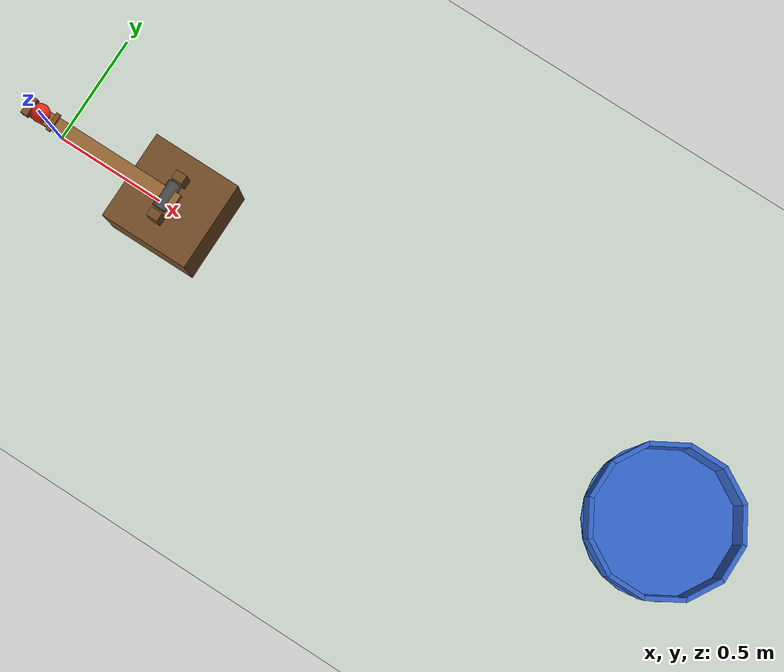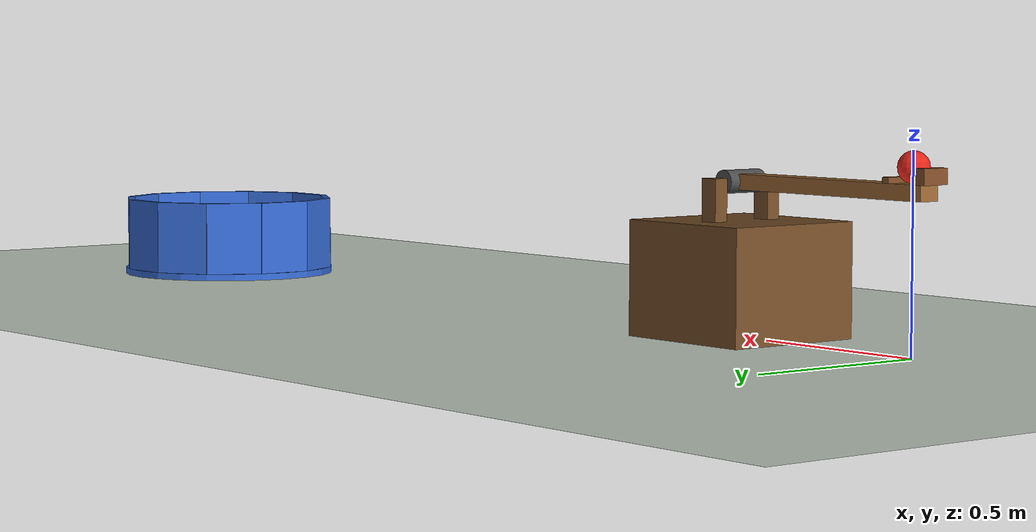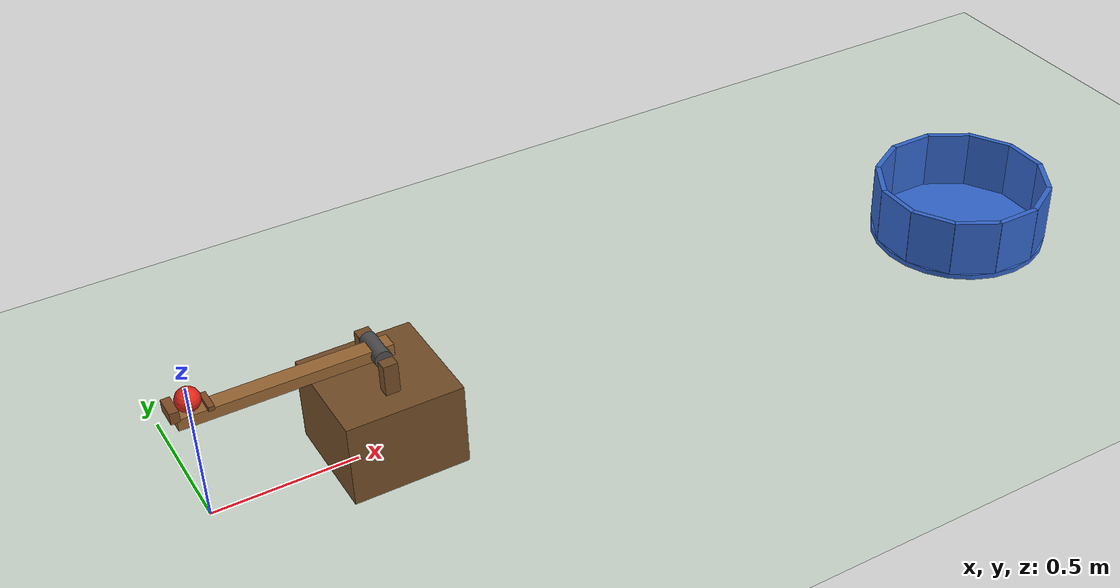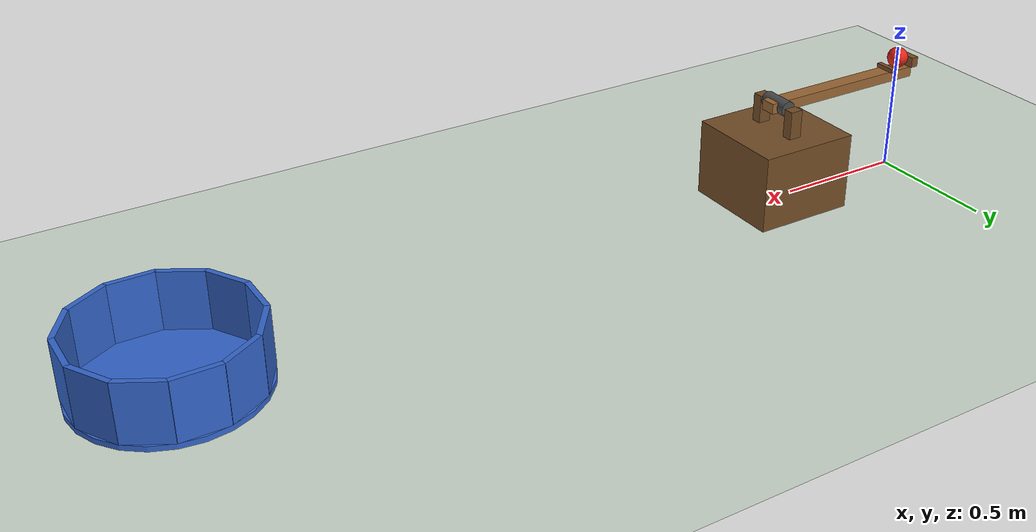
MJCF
<mujoco model="catapult_to_bucket">
  <compiler angle="radian"/>
  <option timestep="0.002" integrator="implicitfast" gravity="0 0 -9.81"/>

  <visual>
    <global offwidth="1280" offheight="720"/>
  </visual>

  <worldbody>
    <light name="sun" pos="1.5 -2 5" dir="0 0.3 -1" directional="true"/>
    <geom name="floor" type="plane" pos="1.5 0 0" size="5 5 0.1" rgba="0.8 0.85 0.8 1"/>

    <!-- catapult frame (static) -->
    <geom name="catapult_base" type="box" pos="0.6 0 0.15" size="0.2 0.2 0.15" rgba="0.45 0.3 0.15 1"/>
    <geom name="catapult_post_l" type="box" pos="0.6 0.09 0.355" size="0.025 0.02 0.055" rgba="0.45 0.3 0.15 1"/>
    <geom name="catapult_post_r" type="box" pos="0.6 -0.09 0.355" size="0.025 0.02 0.055" rgba="0.45 0.3 0.15 1"/>

    <!-- catapult arm: points along -x at angle 0, rotates up about +y -->
    <body name="catapult_arm" pos="0.6 0 0.4">
      <joint name="catapult_hinge" type="hinge" axis="0 1 0" limited="true" range="-0.2 0.70" solreflimit="0.005 1"/>
      <geom name="catapult_hub" type="cylinder" fromto="0 -0.06 0 0 0.06 0" size="0.03" mass="0.2" rgba="0.3 0.3 0.3 1"/>
      <geom name="catapult_beam" type="box" pos="-0.3 0 0" size="0.35 0.03 0.02" mass="1.0" priority="1" friction="0.1 0.005 0.0001" solref="0.005 1" rgba="0.6 0.4 0.2 1"/>
      <geom name="catapult_lip_outer" type="box" pos="-0.656 0 0.04" size="0.015 0.04 0.02" mass="0.05" priority="1" friction="0.05 0.005 0.0001" solref="0.005 1" rgba="0.5 0.3 0.15 1"/>
      <geom name="catapult_lip_inner" type="box" pos="-0.545 0 0.0275" size="0.01 0.04 0.0075" mass="0.03" priority="1" friction="0.05 0.005 0.0001" solref="0.005 1" rgba="0.5 0.3 0.15 1"/>
    </body>

    <!-- ball, resting in the cup -->
    <body name="ball" pos="0 0 0.46">
      <freejoint name="ball_free"/>
      <geom name="ball" type="sphere" size="0.04" mass="0.1" rgba="0.9 0.15 0.1 1"/>
    </body>

    <!-- bucket (static), centre 3 m downrange of the ball start -->
    <body name="bucket" pos="3 0 0">
      <geom name="bucket_floor" type="cylinder" pos="0 0 0.01" size="0.33 0.01" priority="1" condim="6" friction="1 0.02 0.01" rgba="0.2 0.4 0.8 1"/>
      <geom name="bucket_wall_00" type="box" pos="0.31 0 0.13" euler="0 0 0" size="0.01 0.085 0.11" priority="1" condim="6" friction="1 0.02 0.01" rgba="0.2 0.4 0.8 1"/>
      <geom name="bucket_wall_01" type="box" pos="0.26847 0.155 0.13" euler="0 0 0.523599" size="0.01 0.085 0.11" priority="1" condim="6" friction="1 0.02 0.01" rgba="0.2 0.4 0.8 1"/>
      <geom name="bucket_wall_02" type="box" pos="0.155 0.26847 0.13" euler="0 0 1.047198" size="0.01 0.085 0.11" priority="1" condim="6" friction="1 0.02 0.01" rgba="0.2 0.4 0.8 1"/>
      <geom name="bucket_wall_03" type="box" pos="0 0.31 0.13" euler="0 0 1.570796" size="0.01 0.085 0.11" priority="1" condim="6" friction="1 0.02 0.01" rgba="0.2 0.4 0.8 1"/>
      <geom name="bucket_wall_04" type="box" pos="-0.155 0.26847 0.13" euler="0 0 2.094395" size="0.01 0.085 0.11" priority="1" condim="6" friction="1 0.02 0.01" rgba="0.2 0.4 0.8 1"/>
      <geom name="bucket_wall_05" type="box" pos="-0.26847 0.155 0.13" euler="0 0 2.617994" size="0.01 0.085 0.11" priority="1" condim="6" friction="1 0.02 0.01" rgba="0.2 0.4 0.8 1"/>
      <geom name="bucket_wall_06" type="box" pos="-0.31 0 0.13" euler="0 0 3.141593" size="0.01 0.085 0.11" priority="1" condim="6" friction="1 0.02 0.01" rgba="0.2 0.4 0.8 1"/>
      <geom name="bucket_wall_07" type="box" pos="-0.26847 -0.155 0.13" euler="0 0 3.665191" size="0.01 0.085 0.11" priority="1" condim="6" friction="1 0.02 0.01" rgba="0.2 0.4 0.8 1"/>
      <geom name="bucket_wall_08" type="box" pos="-0.155 -0.26847 0.13" euler="0 0 4.188790" size="0.01 0.085 0.11" priority="1" condim="6" friction="1 0.02 0.01" rgba="0.2 0.4 0.8 1"/>
      <geom name="bucket_wall_09" type="box" pos="0 -0.31 0.13" euler="0 0 4.712389" size="0.01 0.085 0.11" priority="1" condim="6" friction="1 0.02 0.01" rgba="0.2 0.4 0.8 1"/>
      <geom name="bucket_wall_10" type="box" pos="0.155 -0.26847 0.13" euler="0 0 5.235988" size="0.01 0.085 0.11" priority="1" condim="6" friction="1 0.02 0.01" rgba="0.2 0.4 0.8 1"/>
      <geom name="bucket_wall_11" type="box" pos="0.26847 -0.155 0.13" euler="0 0 5.759587" size="0.01 0.085 0.11" priority="1" condim="6" friction="1 0.02 0.01" rgba="0.2 0.4 0.8 1"/>
    </body>
  </worldbody>

  <actuator>
    <velocity name="catapult_motor" joint="catapult_hinge" kv="200" ctrllimited="true" ctrlrange="0 10" forcelimited="true" forcerange="-20 20"/>
  </actuator>

  <keyframe>
    <key name="start" qpos="0  0 0 0.46 1 0 0 0" qvel="0  0 0 0 0 0 0" ctrl="7.86"/>
  </keyframe>
</mujoco>
